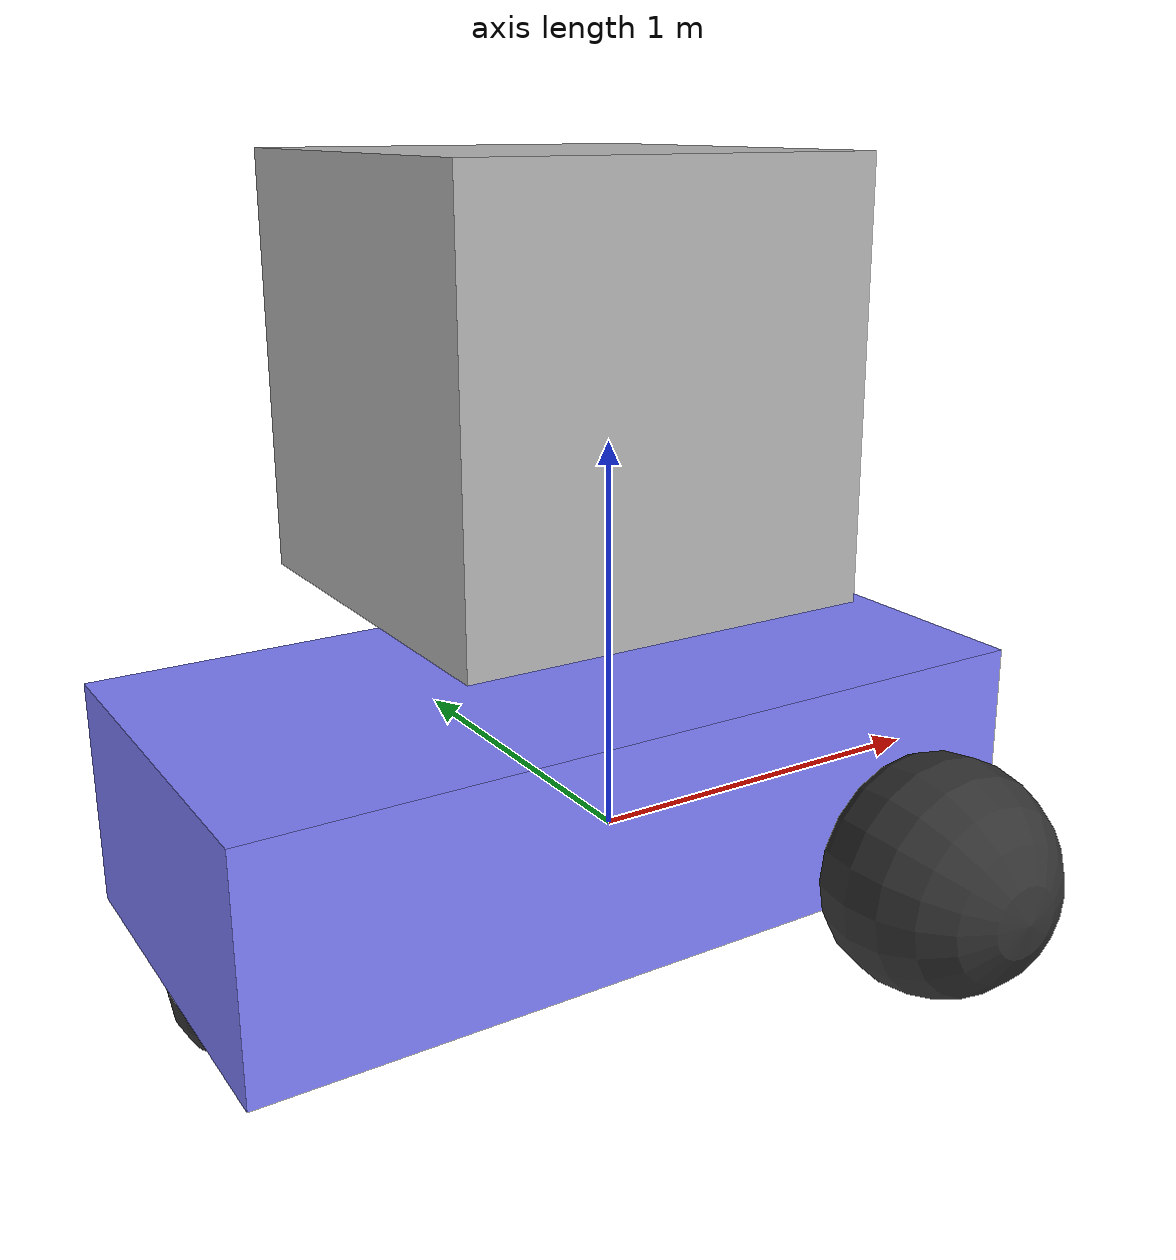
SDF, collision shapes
<?xml version="1.0" ?>
<sdf version="1.8">
    <model name='vehicle'>
      <link name='chassis'>
        <pose>-0.151427 -0 0.175 0 -0 0</pose>
        <inertial>
          <mass>1.14395</mass>
          <inertia>
            <ixx>0.126164</ixx>
            <ixy>0</ixy>
            <ixz>0</ixz>
            <iyy>0.416519</iyy>
            <iyz>0</iyz>
            <izz>0.481014</izz>
          </inertia>
        </inertial>
        <visual name='visual_chassis'>
          <geometry>
            <box>
              <size>2.01142 1 0.568726</size>
            </box>
          </geometry>
          <material>
            <ambient>0.5 0.5 1.0 1</ambient>
            <diffuse>0.5 0.5 1.0 1</diffuse>
            <specular>0.0 0.0 1.0 1</specular>
          </material>
        </visual>
        <collision name='collision_chassis'>
          <geometry>
            <box>
              <size>2.01142 1 0.568726</size>
            </box>
          </geometry>
        </collision>
      </link>

      <link name='left_wheel'>
        <pose>0.554283 0.625029 -0.025 -1.5707 0 0</pose>
        <inertial>
          <mass>2</mass>
          <inertia>
            <ixx>0.145833</ixx>
            <ixy>0</ixy>
            <ixz>0</ixz>
            <iyy>0.145833</iyy>
            <iyz>0</iyz>
            <izz>0.125</izz>
          </inertia>
        </inertial>
        <visual name='visual_left_wheel'>
          <geometry>
            <sphere>
              <radius>0.3</radius>
            </sphere>
          </geometry>
          <material>
            <ambient>0.2 0.2 0.2 1</ambient>
            <diffuse>0.2 0.2 0.2 1</diffuse>
            <specular>0.2 0.2 0.2 1</specular>
          </material>
        </visual>
        <collision name='collision_left_wheel'>
          <geometry>
            <sphere>
              <radius>0.3</radius>
            </sphere>
          </geometry>
        </collision>
      </link>

      <link name='right_wheel'>
        <pose>0.554282 -0.625029 -0.025 -1.5707 0 0</pose>
        <inertial>
          <mass>2</mass>
          <inertia>
            <ixx>0.145833</ixx>
            <ixy>0</ixy>
            <ixz>0</ixz>
            <iyy>0.145833</iyy>
            <iyz>0</iyz>
            <izz>0.125</izz>
          </inertia>
        </inertial>
        <visual name='visual_right_wheel'>
          <geometry>
            <sphere>
              <radius>0.3</radius>
            </sphere>
          </geometry>
          <material>
            <ambient>0.2 0.2 0.2 1</ambient>
            <diffuse>0.2 0.2 0.2 1</diffuse>
            <specular>0.2 0.2 0.2 1</specular>
          </material>
        </visual>
        <collision name='collision_right_wheel'>
          <geometry>
            <sphere>
              <radius>0.3</radius>
            </sphere>
          </geometry>
        </collision>
      </link>

      <link name='caster'>
        <pose>-0.957138 -0 -0.125 0 -0 0</pose>
        <inertial>
          <mass>1</mass>
          <inertia>
            <ixx>0.1</ixx>
            <ixy>0</ixy>
            <ixz>0</ixz>
            <iyy>0.1</iyy>
            <iyz>0</iyz>
            <izz>0.1</izz>
          </inertia>
        </inertial>
        <visual name='visual_caster'>
          <geometry>
            <sphere>
              <radius>0.2</radius>
            </sphere>
          </geometry>
          <material>
            <ambient>0.2 0.2 0.2 1</ambient>
            <diffuse>0.2 0.2 0.2 1</diffuse>
            <specular>0.2 0.2 0.2 1</specular>
          </material>
        </visual>
        <collision name='collision_caster'>
          <geometry>
            <sphere>
              <radius>0.2</radius>
            </sphere>
          </geometry>
        </collision>
      </link>

      <joint name='left_wheel_joint' type='revolute'>
        <parent>chassis</parent>
        <child>left_wheel</child>
        <axis>
          <xyz>0 0 1</xyz>
          <limit>
            <lower>-1.79769e+308</lower>
            <upper>1.79769e+308</upper>
          </limit>
        </axis>
      </joint>

      <joint name='right_wheel_joint' type='revolute'>
        <parent>chassis</parent>
        <child>right_wheel</child>
        <axis>
          <xyz>0 0 1</xyz>
          <limit>
            <lower>-1.79769e+308</lower>
            <upper>1.79769e+308</upper>
          </limit>
        </axis>
      </joint>

      <joint name='caster_wheel' type='ball'>
        <parent>chassis</parent>
        <child>caster</child>
      </joint>

    <plugin
        filename="ignition-gazebo-diff-drive-system"
        name="ignition::gazebo::systems::DiffDrive">
        <left_joint>left_wheel_joint</left_joint>
        <right_joint>right_wheel_joint</right_joint>
        <wheel_separation>1.25</wheel_separation>
        <wheel_radius>0.3</wheel_radius>
        <odom_publish_frequency>1</odom_publish_frequency>
        <max_linear_acceleration>10</max_linear_acceleration>
        <min_linear_acceleration>-10</min_linear_acceleration>
        <max_angular_acceleration>20</max_angular_acceleration>
        <min_angular_acceleration>-20</min_angular_acceleration>
        <max_linear_velocity>10</max_linear_velocity>
        <min_linear_velocity>-10</min_linear_velocity>
        <max_angular_velocity>20</max_angular_velocity>
        <min_angular_velocity>-20</min_angular_velocity>
        <topic>cmd_vel</topic>
      </plugin>

      <link name='april_cube'>
	<pose relative_to='chassis'>0 0 1 0 0 0</pose>
            <inertial> <!--inertial properties of the link mass, inertia matix-->
                <mass>1</mass>
                <inertia>
                    <ixx>0.095329</ixx>
                    <ixy>0</ixy>
                    <ixz>0</ixz>
                    <iyy>0.381317</iyy>
                    <iyz>0</iyz>
                    <izz>0.476646</izz>
                </inertia>
            </inertial>
            <collision name='tag0_collision'>
                <geometry>
                    <box> 0.5 0.5 0.5</box>
                </geometry>
            </collision>
            <visual name="tag0_visual">
                <geometry>
                    <mesh>
                            <uri>file://models/tag0_cube/meshes/tag0_cube.dae</uri>
                        <scale> 0.5 0.5 0.5 </scale>
                    </mesh>
                </geometry>
            </visual>
        </link>

	<joint name='april_joint' type='fixed'>
		<parent>chassis</parent>
		<child>april_cube</child>
	</joint>

    </model>
</sdf>
